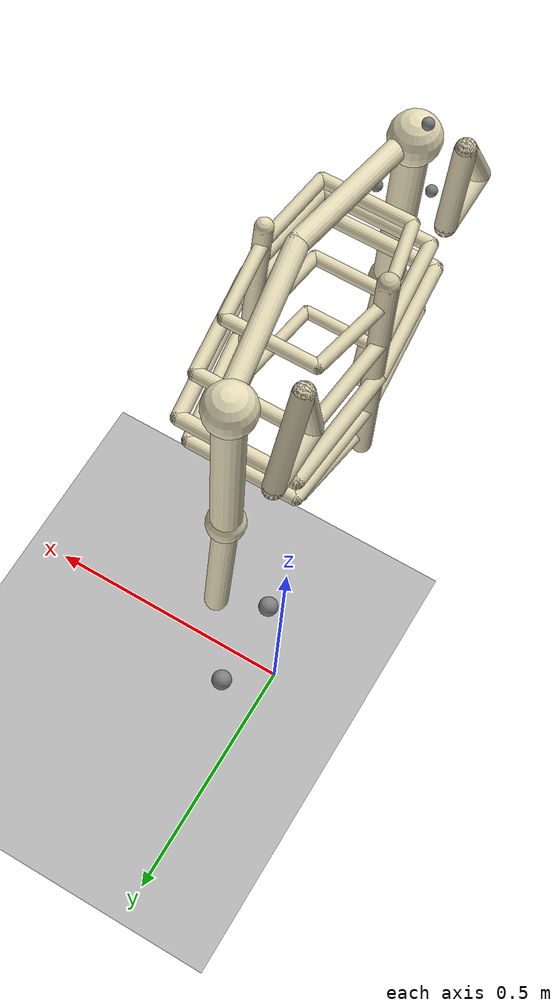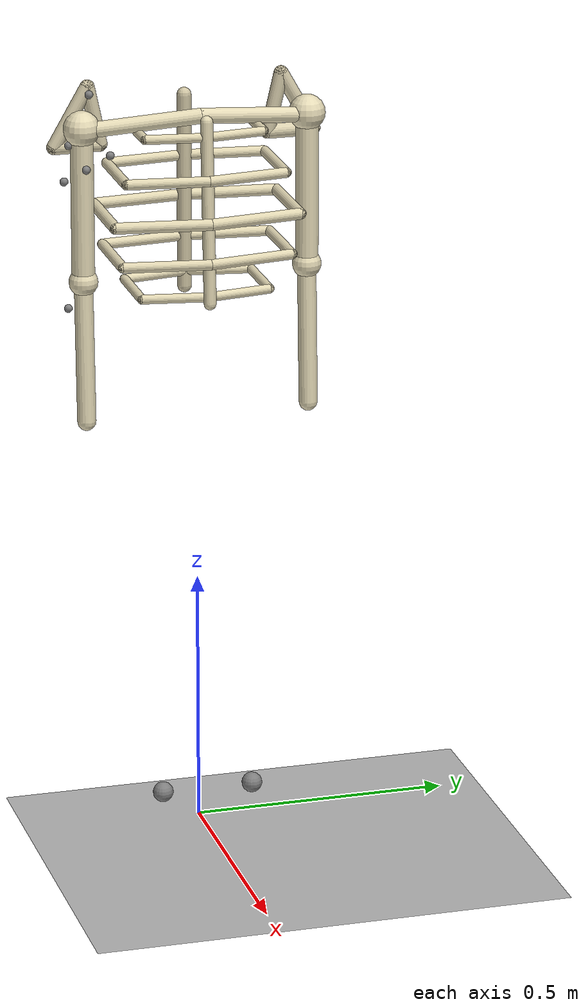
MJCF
<mujoco model="phase1_supported_humanoid">
  <!-- Phase-1 display model. The weld is an explicit temporary stand, not a
       claim that the placeholder humanoid is dynamically identified. -->
  <compiler angle="radian"
            meshdir="../humanoid/assets/mesh"
            texturedir="../humanoid/assets/texture"/>
  <option timestep="0.001" integrator="implicitfast" gravity="0 0 -9.81"/>
  <default>
    <joint limited="true" damping="0.05"/>
    <geom friction="0.9 0.02 0.001" condim="3"/>
  </default>
  <include file="../humanoid/body.xml"/>
  <include file="../humanoid/actuators.xml"/>
  <include file="../humanoid/sensors.xml"/>
  <include file="../humanoid/contact.xml"/>
  <equality>
    <weld name="phase1_pelvis_support" body1="pelvis"/>
  </equality>
</mujoco>

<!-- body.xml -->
<mujocoinclude>
  <!-- Placeholder geometry for architecture validation only. Dimensions,
       mass and inertia remain TBD pending CAD and identification. -->
  <worldbody>
    <geom name="floor" type="plane" size="5 5 0.1" rgba="0.7 0.7 0.7 1"/>
    <body name="pelvis" pos="0 0 1.0">
      <freejoint name="pelvis_free"/>
      <geom name="pelvis_collision" type="box" size="0.14 0.10 0.10"
            mass="3.0" rgba="0 0 0 0"/>
      <body name="torso" pos="0 0 0.25">
        <joint name="waist_pitch" type="hinge" axis="0 1 0" range="-0.5 0.5"/>
        <geom name="torso_collision" type="box" size="0.18 0.10 0.25"
              mass="5.0" rgba="0 0 0 0"/>

        <!-- Egg-shaped rib cage. Each rib is an open six-segment oval around
             the transparent torso collision body. x=front, y=left, z=up. -->
        <geom name="sternum" type="capsule" fromto="0.105 0 -0.16 0.085 0 0.19"
              size="0.012" mass="0" contype="0" conaffinity="0"
              rgba="0.88 0.84 0.70 1"/>
        <geom name="spine_thoracic" type="capsule" fromto="-0.085 0 -0.18 -0.080 0 0.20"
              size="0.014" mass="0" contype="0" conaffinity="0"
              rgba="0.82 0.78 0.65 1"/>

        <!-- Rib 1: narrow upper end of the egg. -->
        <geom name="rib_1_lf" type="capsule" fromto="0.085 0 0.16 0.070 0.115 0.16" size="0.009" mass="0" contype="0" conaffinity="0" rgba="0.88 0.84 0.70 1"/>
        <geom name="rib_1_ls" type="capsule" fromto="0.070 0.115 0.16 -0.055 0.115 0.16" size="0.009" mass="0" contype="0" conaffinity="0" rgba="0.88 0.84 0.70 1"/>
        <geom name="rib_1_lb" type="capsule" fromto="-0.055 0.115 0.16 -0.080 0 0.16" size="0.009" mass="0" contype="0" conaffinity="0" rgba="0.88 0.84 0.70 1"/>
        <geom name="rib_1_rf" type="capsule" fromto="0.085 0 0.16 0.070 -0.115 0.16" size="0.009" mass="0" contype="0" conaffinity="0" rgba="0.88 0.84 0.70 1"/>
        <geom name="rib_1_rs" type="capsule" fromto="0.070 -0.115 0.16 -0.055 -0.115 0.16" size="0.009" mass="0" contype="0" conaffinity="0" rgba="0.88 0.84 0.70 1"/>
        <geom name="rib_1_rb" type="capsule" fromto="-0.055 -0.115 0.16 -0.080 0 0.16" size="0.009" mass="0" contype="0" conaffinity="0" rgba="0.88 0.84 0.70 1"/>

        <!-- Rib 2. -->
        <geom name="rib_2_lf" type="capsule" fromto="0.105 0 0.08 0.085 0.155 0.08" size="0.010" mass="0" contype="0" conaffinity="0" rgba="0.88 0.84 0.70 1"/>
        <geom name="rib_2_ls" type="capsule" fromto="0.085 0.155 0.08 -0.070 0.155 0.08" size="0.010" mass="0" contype="0" conaffinity="0" rgba="0.88 0.84 0.70 1"/>
        <geom name="rib_2_lb" type="capsule" fromto="-0.070 0.155 0.08 -0.085 0 0.08" size="0.010" mass="0" contype="0" conaffinity="0" rgba="0.88 0.84 0.70 1"/>
        <geom name="rib_2_rf" type="capsule" fromto="0.105 0 0.08 0.085 -0.155 0.08" size="0.010" mass="0" contype="0" conaffinity="0" rgba="0.88 0.84 0.70 1"/>
        <geom name="rib_2_rs" type="capsule" fromto="0.085 -0.155 0.08 -0.070 -0.155 0.08" size="0.010" mass="0" contype="0" conaffinity="0" rgba="0.88 0.84 0.70 1"/>
        <geom name="rib_2_rb" type="capsule" fromto="-0.070 -0.155 0.08 -0.085 0 0.08" size="0.010" mass="0" contype="0" conaffinity="0" rgba="0.88 0.84 0.70 1"/>

        <!-- Rib 3: widest part. -->
        <geom name="rib_3_lf" type="capsule" fromto="0.120 0 0 0.095 0.180 0" size="0.011" mass="0" contype="0" conaffinity="0" rgba="0.88 0.84 0.70 1"/>
        <geom name="rib_3_ls" type="capsule" fromto="0.095 0.180 0 -0.075 0.180 0" size="0.011" mass="0" contype="0" conaffinity="0" rgba="0.88 0.84 0.70 1"/>
        <geom name="rib_3_lb" type="capsule" fromto="-0.075 0.180 0 -0.090 0 0" size="0.011" mass="0" contype="0" conaffinity="0" rgba="0.88 0.84 0.70 1"/>
        <geom name="rib_3_rf" type="capsule" fromto="0.120 0 0 0.095 -0.180 0" size="0.011" mass="0" contype="0" conaffinity="0" rgba="0.88 0.84 0.70 1"/>
        <geom name="rib_3_rs" type="capsule" fromto="0.095 -0.180 0 -0.075 -0.180 0" size="0.011" mass="0" contype="0" conaffinity="0" rgba="0.88 0.84 0.70 1"/>
        <geom name="rib_3_rb" type="capsule" fromto="-0.075 -0.180 0 -0.090 0 0" size="0.011" mass="0" contype="0" conaffinity="0" rgba="0.88 0.84 0.70 1"/>

        <!-- Rib 4. -->
        <geom name="rib_4_lf" type="capsule" fromto="0.115 0 -0.08 0.090 0.165 -0.08" size="0.010" mass="0" contype="0" conaffinity="0" rgba="0.88 0.84 0.70 1"/>
        <geom name="rib_4_ls" type="capsule" fromto="0.090 0.165 -0.08 -0.070 0.165 -0.08" size="0.010" mass="0" contype="0" conaffinity="0" rgba="0.88 0.84 0.70 1"/>
        <geom name="rib_4_lb" type="capsule" fromto="-0.070 0.165 -0.08 -0.085 0 -0.08" size="0.010" mass="0" contype="0" conaffinity="0" rgba="0.88 0.84 0.70 1"/>
        <geom name="rib_4_rf" type="capsule" fromto="0.115 0 -0.08 0.090 -0.165 -0.08" size="0.010" mass="0" contype="0" conaffinity="0" rgba="0.88 0.84 0.70 1"/>
        <geom name="rib_4_rs" type="capsule" fromto="0.090 -0.165 -0.08 -0.070 -0.165 -0.08" size="0.010" mass="0" contype="0" conaffinity="0" rgba="0.88 0.84 0.70 1"/>
        <geom name="rib_4_rb" type="capsule" fromto="-0.070 -0.165 -0.08 -0.085 0 -0.08" size="0.010" mass="0" contype="0" conaffinity="0" rgba="0.88 0.84 0.70 1"/>

        <!-- Rib 5: narrow lower end of the egg. -->
        <geom name="rib_5_lf" type="capsule" fromto="0.095 0 -0.15 0.075 0.125 -0.15" size="0.009" mass="0" contype="0" conaffinity="0" rgba="0.88 0.84 0.70 1"/>
        <geom name="rib_5_ls" type="capsule" fromto="0.075 0.125 -0.15 -0.060 0.125 -0.15" size="0.009" mass="0" contype="0" conaffinity="0" rgba="0.88 0.84 0.70 1"/>
        <geom name="rib_5_lb" type="capsule" fromto="-0.060 0.125 -0.15 -0.080 0 -0.15" size="0.009" mass="0" contype="0" conaffinity="0" rgba="0.88 0.84 0.70 1"/>
        <geom name="rib_5_rf" type="capsule" fromto="0.095 0 -0.15 0.075 -0.125 -0.15" size="0.009" mass="0" contype="0" conaffinity="0" rgba="0.88 0.84 0.70 1"/>
        <geom name="rib_5_rs" type="capsule" fromto="0.075 -0.125 -0.15 -0.060 -0.125 -0.15" size="0.009" mass="0" contype="0" conaffinity="0" rgba="0.88 0.84 0.70 1"/>
        <geom name="rib_5_rb" type="capsule" fromto="-0.060 -0.125 -0.15 -0.080 0 -0.15" size="0.009" mass="0" contype="0" conaffinity="0" rgba="0.88 0.84 0.70 1"/>
        <body name="head" pos="0 0 0.38">
          <joint name="neck_yaw" type="hinge" axis="0 0 1" range="-1.0 1.0"/>
          <geom name="head_collision" type="sphere" size="0.10" mass="1.0"
                rgba="0 0 0 0"/>
        </body>
        <body name="left_clavicle">
          <geom name="left_clavicle_bone" type="capsule"
                fromto="0.040 0 0.19 0.010 0.20 0.17" size="0.015"
                mass="0" contype="0" conaffinity="0" rgba="0.90 0.86 0.72 1"/>
          <body name="left_scapula" pos="0 0.20 0.17">
            <geom name="left_scapula_upper" type="capsule"
                  fromto="-0.075 -0.01 0.06 -0.080 0.055 -0.055" size="0.014"
                  mass="0" contype="0" conaffinity="0" rgba="0.86 0.82 0.69 1"/>
            <geom name="left_scapula_medial" type="capsule"
                  fromto="-0.080 0.055 -0.055 -0.080 -0.035 -0.055" size="0.014"
                  mass="0" contype="0" conaffinity="0" rgba="0.86 0.82 0.69 1"/>
            <geom name="left_scapula_lateral" type="capsule"
                  fromto="-0.080 -0.035 -0.055 -0.075 -0.01 0.06" size="0.014"
                  mass="0" contype="0" conaffinity="0" rgba="0.86 0.82 0.69 1"/>
            <body name="left_upper_arm" pos="0 0.02 0">
              <joint name="left_shoulder" type="ball"/>
              <geom name="left_humerus_collision" type="capsule"
                    fromto="0 0 0 0 0 -0.30" size="0.035" mass="0.7" rgba="0 0 0 0"/>
              <geom name="left_humerus_bone" type="capsule"
                    fromto="0 0 -0.015 0 0 -0.285" size="0.022" mass="0"
                    contype="0" conaffinity="0" rgba="0.90 0.86 0.72 1"/>
              <geom name="left_humerus_head" type="sphere" pos="0 0 0"
                    size="0.035" mass="0" contype="0" conaffinity="0"
                    rgba="0.90 0.86 0.72 1"/>
              <body name="left_forearm" pos="0 0 -0.30">
                <joint name="left_elbow" type="hinge" axis="1 0 0" range="0 2.4"/>
                <geom name="left_ulna_collision" type="capsule"
                      fromto="0 0 0 0 0 -0.28" size="0.03" mass="0.5" rgba="0 0 0 0"/>
                <geom name="left_ulna_bone" type="capsule"
                      fromto="0 0 -0.01 0.012 0 -0.275" size="0.018" mass="0"
                      contype="0" conaffinity="0" rgba="0.90 0.86 0.72 1"/>
                <geom name="left_elbow_bone" type="sphere" pos="0 0 0"
                      size="0.028" mass="0" contype="0" conaffinity="0"
                      rgba="0.90 0.86 0.72 1"/>
              </body>
            </body>
          </body>
        </body>
        <body name="right_clavicle">
          <geom name="right_clavicle_bone" type="capsule"
                fromto="0.040 0 0.19 0.010 -0.20 0.17" size="0.015" mass="0"
                contype="0" conaffinity="0" rgba="0.90 0.86 0.72 1"/>
          <body name="right_scapula" pos="0 -0.20 0.17">
            <joint name="right_scapula_rotation" type="hinge" axis="1 0 0"
                   range="-0.35 0.35" damping="0.20"/>
            <geom name="right_scapula_collision" type="ellipsoid"
                  size="0.035 0.055 0.085" mass="0.20" rgba="0 0 0 0"/>
            <geom name="right_scapula_upper" type="capsule"
                  fromto="-0.075 0.01 0.06 -0.080 -0.055 -0.055" size="0.014"
                  mass="0" contype="0" conaffinity="0" rgba="0.86 0.82 0.69 1"/>
            <geom name="right_scapula_medial" type="capsule"
                  fromto="-0.080 -0.055 -0.055 -0.080 0.035 -0.055" size="0.014"
                  mass="0" contype="0" conaffinity="0" rgba="0.86 0.82 0.69 1"/>
            <geom name="right_scapula_lateral" type="capsule"
                  fromto="-0.080 0.035 -0.055 -0.075 0.01 0.06" size="0.014"
                  mass="0" contype="0" conaffinity="0" rgba="0.86 0.82 0.69 1"/>
            <site name="right_serratus_origin" pos="0.02 0.03 -0.05" size="0.008"/>
            <site name="right_trapezius_insertion" pos="-0.02 0 0.06" size="0.008"/>
            <body name="right_upper_arm" pos="0 -0.02 0">
              <joint name="right_shoulder_abduction" type="hinge" axis="1 0 0"
                     range="-2.10 0.35" damping="0.25"/>
              <joint name="right_shoulder_flexion" type="hinge" axis="0 1 0"
                     range="-1.80 1.80" damping="0.25"/>
              <joint name="right_shoulder_rotation" type="hinge" axis="0 0 1"
                     range="-1.20 1.20" damping="0.20"/>
              <geom name="right_upper_arm_collision" type="capsule"
                    fromto="0 0 0 0 0 -0.30" size="0.042" mass="0.90"
                    rgba="0 0 0 0"/>
              <geom name="right_humerus_bone" type="capsule"
                    fromto="0 0 -0.015 0 0 -0.285" size="0.022" mass="0"
                    contype="0" conaffinity="0" rgba="0.90 0.86 0.72 1"/>
              <geom name="right_humerus_head" type="sphere" pos="0 0 0"
                    size="0.035" mass="0" contype="0" conaffinity="0"
                    rgba="0.90 0.86 0.72 1"/>
              <site name="right_deltoid_insertion" pos="0 -0.035 -0.10" size="0.008"/>
              <site name="right_pectoralis_insertion" pos="0.035 0 -0.07" size="0.008"/>
              <site name="right_latissimus_insertion" pos="-0.035 0 -0.08" size="0.008"/>
              <site name="right_biceps_origin" pos="0 -0.025 -0.03" size="0.008"/>
              <body name="right_forearm" pos="0 0 -0.30">
                <joint name="right_elbow" type="hinge" axis="1 0 0"
                       range="-2.4 0" damping="0.18"/>
                <geom name="right_forearm_collision" type="capsule"
                      fromto="0 0 0 0 0 -0.28" size="0.035" mass="0.65"
                      rgba="0 0 0 0"/>
                <geom name="right_ulna_bone" type="capsule"
                      fromto="0 0 -0.01 0.012 0 -0.275" size="0.018" mass="0"
                      contype="0" conaffinity="0" rgba="0.90 0.86 0.72 1"/>
                <geom name="right_elbow_bone" type="sphere" pos="0 0 0"
                      size="0.028" mass="0" contype="0" conaffinity="0"
                      rgba="0.90 0.86 0.72 1"/>
                <site name="right_biceps_insertion" pos="0 -0.03 -0.05" size="0.008"/>
                <body name="right_hand" pos="0 0 -0.29">
                  <geom name="right_hand_collision" type="box"
                        size="0.035 0.025 0.075" pos="0 0 -0.065"
                        mass="0.25" rgba="0 0 0 0"/>
                </body>
              </body>
            </body>
          </body>
        </body>
      </body>
      <body name="left_thigh" pos="0 0.09 -0.10">
        <joint name="left_hip" type="ball"/>
        <geom type="capsule" fromto="0 0 0 0 0 -0.38" size="0.05"
              mass="1.5" rgba="0 0 0 0"/>
        <body name="left_shin" pos="0 0 -0.38">
          <joint name="left_knee" type="hinge" axis="0 1 0" range="0 2.2"/>
          <geom type="capsule" fromto="0 0 0 0 0 -0.38" size="0.045"
                mass="1.1" rgba="0 0 0 0"/>
          <body name="left_foot" pos="0 0 -0.40">
            <joint name="left_ankle" type="hinge" axis="0 1 0" range="-0.6 0.6"/>
            <geom type="box" size="0.12 0.06 0.035" pos="0.07 0 0"
                  mass="0.4" rgba="0 0 0 0"/>
            <site name="left_foot_contact" pos="0.07 0 -0.035" size="0.02"/>
          </body>
        </body>
      </body>
      <body name="right_thigh" pos="0 -0.09 -0.10">
        <joint name="right_hip" type="ball"/>
        <geom type="capsule" fromto="0 0 0 0 0 -0.38" size="0.05"
              mass="1.5" rgba="0 0 0 0"/>
        <body name="right_shin" pos="0 0 -0.38">
          <joint name="right_knee" type="hinge" axis="0 1 0" range="0 2.2"/>
          <geom type="capsule" fromto="0 0 0 0 0 -0.38" size="0.045"
                mass="1.1" rgba="0 0 0 0"/>
          <body name="right_foot" pos="0 0 -0.40">
            <joint name="right_ankle" type="hinge" axis="0 1 0" range="-0.6 0.6"/>
            <geom type="box" size="0.12 0.06 0.035" pos="0.07 0 0"
                  mass="0.4" rgba="0 0 0 0"/>
            <site name="right_foot_contact" pos="0.07 0 -0.035" size="0.02"/>
          </body>
        </body>
      </body>
    </body>
  </worldbody>
</mujocoinclude>

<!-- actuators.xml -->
<mujocoinclude>
  <!-- Actuator Component dynamics stay in ai::actuator. These motors are
       optional direct-effort hooks for model debugging only. -->
  <actuator>
    <motor name="debug_waist" joint="waist_pitch" gear="1"/>
    <motor name="debug_left_elbow" joint="left_elbow" gear="1"/>
    <motor name="debug_right_scapula" joint="right_scapula_rotation" gear="1"/>
    <motor name="debug_right_shoulder_abduction" joint="right_shoulder_abduction" gear="1"/>
    <motor name="debug_right_shoulder_flexion" joint="right_shoulder_flexion" gear="1"/>
    <motor name="debug_right_shoulder_rotation" joint="right_shoulder_rotation" gear="1"/>
    <motor name="debug_right_elbow" joint="right_elbow" gear="1"/>
  </actuator>
</mujocoinclude>

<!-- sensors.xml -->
<mujocoinclude>
  <sensor>
    <framequat name="pelvis_orientation" objtype="body" objname="pelvis"/>
    <frameangvel name="pelvis_angular_velocity" objtype="body" objname="pelvis"/>
    <jointpos name="left_elbow_position" joint="left_elbow"/>
    <jointvel name="left_elbow_velocity" joint="left_elbow"/>
    <jointpos name="right_scapula_position" joint="right_scapula_rotation"/>
    <jointvel name="right_scapula_velocity" joint="right_scapula_rotation"/>
    <jointpos name="right_shoulder_abduction_position" joint="right_shoulder_abduction"/>
    <jointvel name="right_shoulder_abduction_velocity" joint="right_shoulder_abduction"/>
    <jointpos name="right_shoulder_flexion_position" joint="right_shoulder_flexion"/>
    <jointvel name="right_shoulder_flexion_velocity" joint="right_shoulder_flexion"/>
    <jointpos name="right_shoulder_rotation_position" joint="right_shoulder_rotation"/>
    <jointvel name="right_shoulder_rotation_velocity" joint="right_shoulder_rotation"/>
    <jointpos name="right_elbow_position" joint="right_elbow"/>
    <jointvel name="right_elbow_velocity" joint="right_elbow"/>
    <touch name="left_foot_touch" site="left_foot_contact"/>
    <touch name="right_foot_touch" site="right_foot_contact"/>
  </sensor>
</mujocoinclude>

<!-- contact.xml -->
<mujocoinclude>
  <contact>
    <exclude body1="left_thigh" body2="left_shin"/>
    <exclude body1="right_thigh" body2="right_shin"/>
    <exclude body1="right_scapula" body2="right_upper_arm"/>
    <exclude body1="right_upper_arm" body2="right_forearm"/>
    <exclude body1="right_forearm" body2="right_hand"/>
  </contact>
</mujocoinclude>
